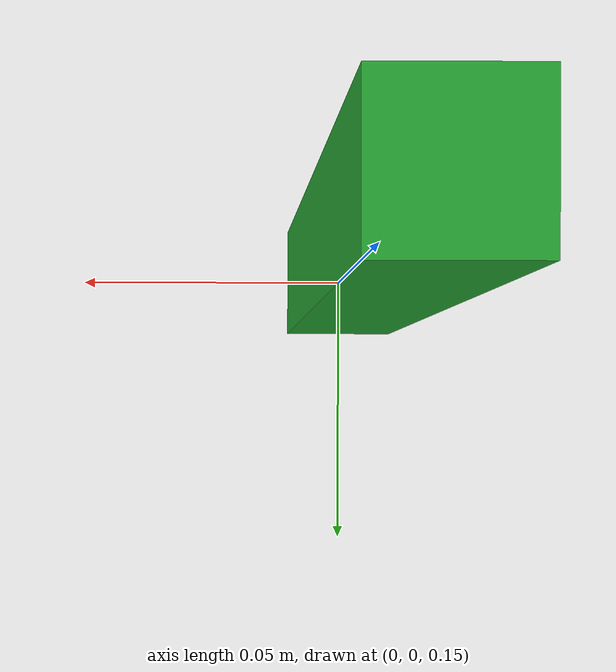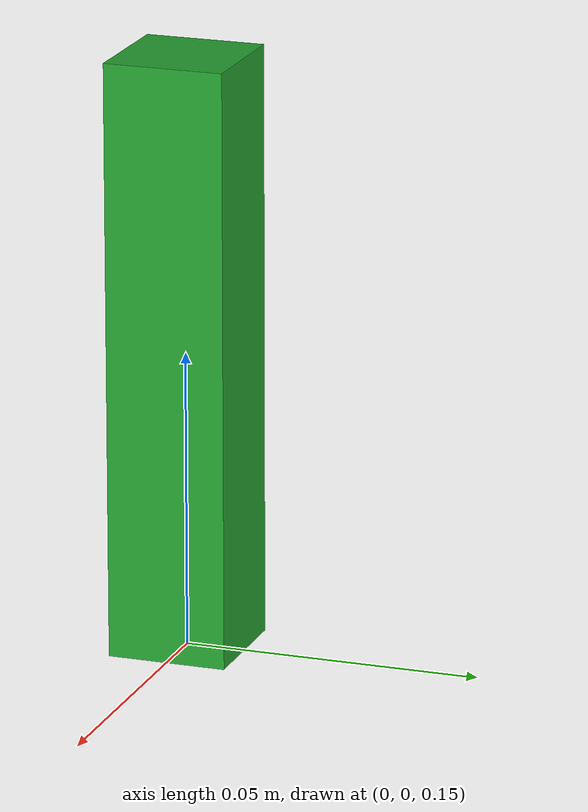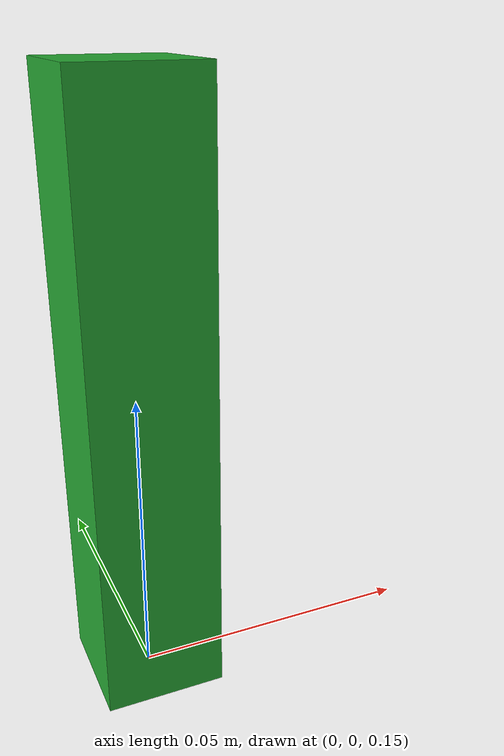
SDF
<?xml version="1.0" ?>
<sdf version="1.4">
  <model name="object_cuboid">
    <static>false</static>
    <link name="link">
      <inertial>
        <pose>0 0 0.2 0 0 0</pose>
        <mass>0.1</mass>
        <inertia>
          <ixx>8.66666667e-5</ixx>
          <ixy>0</ixy>
          <ixz>0</ixz>
          <iyy>8.66666667e-5</iyy>
          <iyz>0</iyz>
          <izz>6.66666667e-6</izz>
        </inertia>
      </inertial>

      <collision name="collision">
        <pose>0 0 0.2 0 0 0</pose>
        <geometry>
          <box>
            <size>0.04 0.04 0.1</size>
          </box>
        </geometry>
        <surface>
          <friction>
            <ode>
              <mu>1.0</mu>
              <mu2>1.0</mu2>
            </ode>
          </friction>
          <contact>
            <ode>
              <kp>10000000.0</kp>
              <kd>1.0</kd>
              <min_depth>0.001</min_depth>
              <max_vel>0.01</max_vel>
            </ode>
          </contact>
        </surface>
      </collision>

      <visual name="visual1">
        <pose>0 0 0.2 0 0 0</pose>
        <geometry>
          <box>
            <size>0.02 0.02 0.1</size>
          </box>
        </geometry>
        <material>
          <script>
            <uri>file://media/materials/scripts/gazebo.material</uri>
            <name>Gazebo/Green</name>
          </script>
        </material>
      </visual>
    </link>
  </model>
</sdf>
